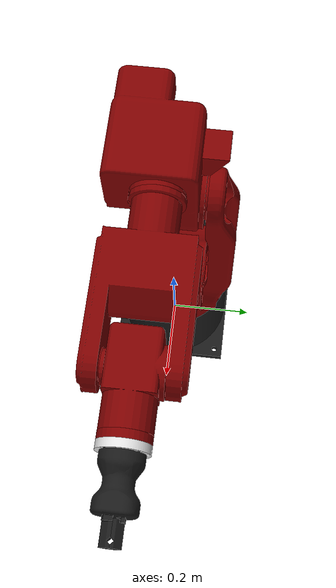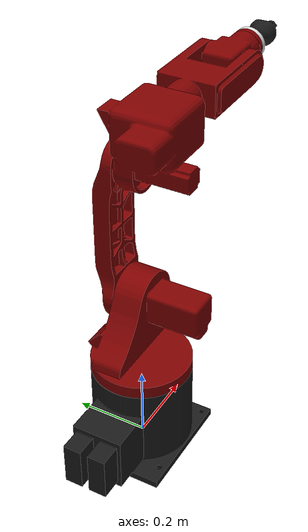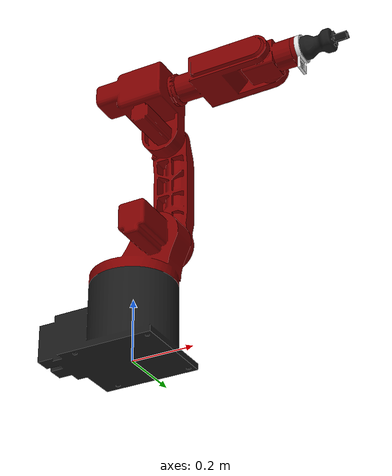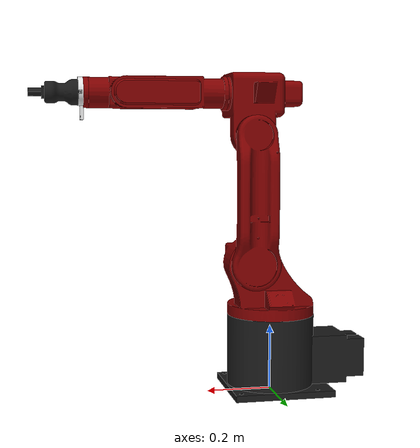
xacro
<?xml version="1.0" ?>
<robot name="borunte" xmlns:xacro="http://ros.org/wiki/xacro">
    <xacro:include filename="$(find borunte_support)/urdf/borunte_hand_e_macro.xacro"/>
    <xacro:borunte_hand_e_macro prefix=""/>

        <!-- 'world' frame: default pose reference frame -->
    <link name="world" />
    <joint name="world-base_link" type="fixed">
      <origin xyz="0 0 0" rpy="0 0 0"/>
      <axis xyz="0 0 1"/>
      <child link="world"/>
      <parent link="base_link"/>
    </joint>
</robot>

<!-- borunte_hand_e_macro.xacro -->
<robot xmlns:xacro="http://ros.org/wiki/xacro">
  <xacro:macro name="borunte_hand_e_macro" params="prefix">

    <xacro:include filename="$(find borunte_support)/urdf/borunte_macro.xacro"/>
    <xacro:borunte_macro prefix="${prefix}"/>

    <xacro:include filename="$(find borunte_support)/urdf/robotiq_hand_e_macro.xacro"/>
    <xacro:robotiq_hand_e_macro prefix=""/>

    <!-- attach hand_e to eef -->
    <!-- tool0 flange is set to correct dimensions in the robotiq_hand_e_macro.xacro -->
    <!-- this assures that planning is done from the perspective of the fingers -->
    <joint name="${prefix}flange-borunte_robotiq_adapter" type="fixed">
      <origin xyz="0 0 0" rpy="0 0 0" />
      <parent link="${prefix}flange" />
      <child link="${prefix}borunte_robotiq_adapter" />
    </joint>

    <!-- Camera frame: location of wrist camera -->
    <link name="${prefix}rgb_camera_link" />
    <joint name="${prefix}borunte_robotiq_adapter-rgb_camera_link" type="fixed">
      <origin xyz="0.06 0 0.03" rpy="0 0 ${pi/2.0}" />
      <parent link="${prefix}borunte_robotiq_adapter" />
      <child link="${prefix}rgb_camera_link" />
    </joint>

    <!-- ROS-Industrial 'tool0' frame: all-zeros tool frame -->
    <link name="${prefix}tool0" />
    <joint name="${prefix}flange-tool0" type="fixed">
      <!-- marker -->
      <origin xyz="0 0 0.1605" rpy="0 ${pi*1} ${-pi/2.0}" />
      <parent link="${prefix}flange" />
      <child link="${prefix}tool0" />
    </joint>

  </xacro:macro>
</robot>

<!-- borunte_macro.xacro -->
<robot xmlns:xacro="http://ros.org/wiki/xacro">
  <xacro:macro name="borunte_macro" params="prefix">
    <material name="${prefix}Black">
      <color rgba="0.1 0.1 0.1 0.99"/>
    </material>
    <material name="${prefix}DarkRed">
      <color rgba="0.5 0.0 0.0 0.99"/>
    </material>

    <!-- link list -->
    <link name="${prefix}base_link">
      <visual>
        <geometry>
          <mesh filename="package://borunte_support/meshes/base_link.stl"/>
        </geometry>
        <origin rpy="0.0 0 0.0" xyz="0 0 0"/>
        <material name="${prefix}Black"/>
      </visual>
      <collision>
        <geometry>
          <mesh filename="package://borunte_support/meshes/base_link_collision.stl"/>
        </geometry>
        <origin rpy="0.0 0 0.0" xyz="0 0 0"/>
      </collision>
    </link>

    <link name="${prefix}link_1">
      <visual>
        <geometry>
          <mesh filename="package://borunte_support/meshes/link_1.stl"/>
        </geometry>
        <origin rpy="0.0 0 0.0" xyz="0 0 0"/>
        <material name="${prefix}DarkRed"/>
      </visual>
      <collision>
        <geometry>
          <mesh filename="package://borunte_support/meshes/link_1_collision.stl"/>
        </geometry>
        <origin rpy="0.0 0 0.0" xyz="0 0 0"/>
      </collision>
      <inertial>
        <mass value="100"/>
        <inertia ixx="1.0" ixy="0.0" ixz="0.0" iyy="1.0" iyz="0.0" izz="1.0"/>
      </inertial>
    </link>

    <link name="${prefix}link_2">
      <visual>
        <geometry>
          <mesh filename="package://borunte_support/meshes/link_2.stl"/>
        </geometry>
        <origin rpy="0.0 0 0.0" xyz="0 0 0"/>
        <material name="${prefix}DarkRed"/>
      </visual>
      <collision>
        <geometry>
          <mesh filename="package://borunte_support/meshes/link_2_collision.stl"/>
        </geometry>
        <origin rpy="0.0 0 0.0" xyz="0 0 0"/>
      </collision>
      <inertial>
        <mass value="100"/>
        <inertia ixx="1.0" ixy="0.0" ixz="0.0" iyy="1.0" iyz="0.0" izz="1.0"/>
      </inertial>
    </link>

    <link name="${prefix}link_3">
      <visual>
        <geometry>
          <mesh filename="package://borunte_support/meshes/link_3.stl"/>
        </geometry>
        <origin rpy="0.0 0 0.0" xyz="0 0.01 0"/>
        <material name="${prefix}DarkRed"/>
      </visual>
      <collision>
        <geometry>
          <mesh filename="package://borunte_support/meshes/link_3_collision.stl"/>
        </geometry>
        <origin rpy="0.0 0 0.0" xyz="0 0.01 0"/>
      </collision>
      <inertial>
        <mass value="100"/>
        <inertia ixx="1.0" ixy="0.0" ixz="0.0" iyy="1.0" iyz="0.0" izz="1.0"/>
      </inertial>
    </link>

    <link name="${prefix}link_4">
      <visual>
        <geometry>
          <mesh filename="package://borunte_support/meshes/link_4.stl"/>
        </geometry>
        <origin rpy="0.0 0.0 0.0" xyz="0 0 0"/>
        <material name="${prefix}DarkRed"/>
      </visual>
      <collision>
        <geometry>
          <mesh filename="package://borunte_support/meshes/link_4_collision.stl"/>
        </geometry>
        <origin rpy="0.0 0 0.0" xyz="0 0 0"/>
      </collision>
      <inertial>
        <mass value="100"/>
        <inertia ixx="1.0" ixy="0.0" ixz="0.0" iyy="1.0" iyz="0.0" izz="1.0"/>
      </inertial>
    </link>

    <link name="${prefix}link_5">
      <visual>
        <geometry>
          <mesh filename="package://borunte_support/meshes/link_5.stl"/>
        </geometry>
        <origin rpy="0 0 0" xyz="0 0 0"/>
        <material name="${prefix}DarkRed"/>
      </visual>
      <collision>
        <geometry>
          <mesh filename="package://borunte_support/meshes/link_5_collision.stl"/>
        </geometry>
        <origin rpy="0 0 0" xyz="0 0 0"/>
      </collision>
      <inertial>
        <mass value="100"/>
        <inertia ixx="1.0" ixy="0.0" ixz="0.0" iyy="1.0" iyz="0.0" izz="1.0"/>
      </inertial>
    </link>

    <link name="${prefix}link_6">
      <visual>
        <geometry>
          <mesh filename="package://borunte_support/meshes/link_6.stl"/>
        </geometry>
        <origin rpy="0 0 0.0" xyz="0 0 0"/>
        <material name="${prefix}DarkRed"/>
      </visual>
      <collision>
        <geometry>
          <mesh filename="package://borunte_support/meshes/link_6_collision.stl"/>
        </geometry>
        <origin rpy="0 0 0.0" xyz="0 0 0"/>
      </collision>
      <inertial>
        <mass value="100"/>
        <inertia ixx="1.0" ixy="0.0" ixz="0.0" iyy="1.0" iyz="0.0" izz="1.0"/>
      </inertial>
    </link>

    <!-- joint list -->
    <joint name="${prefix}joint_1" type="revolute">
      <limit effort="1000.0" lower="-3.076" upper="3.076" velocity="3.14"/>
      <parent link="base_link"/>
      <child link="link_1"/>
      <axis xyz="0 0 1"/>
      <origin rpy="0.0 0.0 0.0" xyz="0 0 0.24"/>
    </joint>

    <joint name="${prefix}joint_2" type="revolute">
      <!-- actual limit -1.74, reduced to reduce config problems -->
      <limit effort="1000.0" lower="-1.0" upper="2.35" velocity="1.0"/>
      <parent link="link_1"/>
      <child link="link_2"/>
      <axis xyz="0 1 0"/>
      <origin rpy="0.0 0.0 0.0" xyz="0.07 0.09 0.165"/>
    </joint>

    <joint name="${prefix}joint_3" type="revolute">
      <limit effort="1000.0" lower="-2.094" upper="1.570" velocity="1.3"/>
      <parent link="link_2"/>
      <child link="link_3"/>
      <axis xyz="0 1 0"/>
      <origin rpy="0.0 ${pi/2.0} 0.0" xyz="0.0 0.0 0.39"/>
    </joint>

    <joint name="${prefix}joint_4" type="revolute">
      <!-- actual limit +-2.094, reduced to reduce config problems -->
      <limit effort="1000.0" lower="${-pi/2.0}" upper="${pi/2.0}" velocity="2.0"/>
      <parent link="link_3"/>
      <child link="link_4"/>
      <axis xyz="0 0 1"/>
      <origin rpy="0.0 0.0 0.0" xyz="-0.125 -0.09 0.075"/>
    </joint>

    <joint name="${prefix}joint_5" type="revolute">
      <limit effort="1000.0" lower="-1.919" upper="2.094" velocity="2.35"/>
      <parent link="link_4"/>
      <child link="link_5"/>
      <axis xyz="0 1 0"/>
      <origin rpy="0.0 0.0 0.0" xyz="0.0 -0.0 0.31"/>
    </joint>

    <joint name="${prefix}joint_6" type="revolute">
      <limit effort="1000.0" lower="${-pi}" upper="${pi}" velocity="2.35"/>
      <parent link="link_5"/>
      <child link="link_6"/>
      <axis xyz="0 0 1"/>
      <origin rpy="0.0 0.0 0.0" xyz="0 0 0.104"/>
    </joint>

    <!-- ROS-Industrial 'base' frame: base_link to Fanuc World Coordinates transform -->
    <link name="${prefix}base" />
    <joint name="${prefix}base_link-base" type="fixed">
      <origin xyz="0 0 0" rpy="0 0 0"/>
      <axis xyz="0 0 1"/>
      <parent link="${prefix}base_link"/>
      <child link="${prefix}base"/>
    </joint>

    <!-- ROS-Industrial 'flange' frame: attachment point for EEF models -->
    <link name="${prefix}flange"/>
    <joint name="${prefix}joint_6-flange" type="fixed">
      <origin xyz="0 0 0.015" rpy="0 0 0" />
      <parent link="${prefix}link_6" />
      <child link="${prefix}flange" />
    </joint>

  </xacro:macro>
</robot>

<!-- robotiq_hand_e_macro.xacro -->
<robot xmlns:xacro="http://ros.org/wiki/xacro">
  <xacro:macro name="robotiq_hand_e_macro" params="prefix">

    <xacro:include filename="$(find borunte_support)/urdf/robotiq_hand_e_base_macro.xacro"/>
    <xacro:robotiq_hand_e_base_macro prefix="${prefix}"/>

    <link name="${prefix}simple_grip_finger_left">
      <visual>
        <geometry>
          <mesh filename="package://borunte_support/meshes/simple_grip_finger.stl"/>
        </geometry>
        <origin xyz="0 0 0" rpy="0 0 0"/>
        <material name="${prefix}Black_Aluminum"/>
      </visual>
      <collision>
        <geometry>
          <mesh filename="package://borunte_support/meshes/simple_grip_finger_collision.stl"/>
        </geometry>
        <origin xyz="0 0 0" rpy="0 0 0.0"/>
      </collision>
    </link>
    <joint name="${prefix}robotiq_hand_e-simple_grip_finger_left" type="fixed">
      <parent link="${prefix}robotiq_hand_e" />
      <child link="${prefix}simple_grip_finger_left" />
      <axis xyz="0 0 1"/>
      <origin xyz="0 0 0.0965" rpy="0 0 ${pi/2.0}" />
    </joint>

    <link name="${prefix}simple_grip_finger_right">
      <visual>
        <geometry>
          <mesh filename="package://borunte_support/meshes/simple_grip_finger.stl"/>
        </geometry>
        <origin xyz="0 0 0" rpy="0 0 0"/>
        <material name="${prefix}Black_Aluminum"/>
      </visual>
      <collision>
        <geometry>
          <mesh filename="package://borunte_support/meshes/simple_grip_finger_collision.stl"/>
        </geometry>
        <origin xyz="0 0 0" rpy="0 0 0.0"/>
      </collision>
    </link>
    <joint name="${prefix}robotiq_hand_e-simple_grip_finger_right" type="fixed">
      <parent link="${prefix}robotiq_hand_e" />
      <child link="${prefix}simple_grip_finger_right" />
      <axis xyz="0 0 1"/>
      <origin xyz="0 0 0.0965" rpy="0 0 -${pi/2.0}" />
    </joint>

  </xacro:macro>
</robot>

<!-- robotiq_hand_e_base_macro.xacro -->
<robot xmlns:xacro="http://ros.org/wiki/xacro">
  <xacro:macro name="robotiq_hand_e_base_macro" params="prefix">

    <material name="${prefix}Black_Aluminum">
      <color rgba="0.1 0.1 0.1 0.99"/>
    </material>

    <material name="${prefix}White_Plastic">
      <color rgba="0.9 0.9 0.9 0.99"/>
    </material>

    <link name="${prefix}borunte_robotiq_adapter">
      <visual>
        <geometry>
          <mesh filename="package://borunte_support/meshes/robotiq_adapter.stl"/>
        </geometry>
        <origin xyz="0 0 0" rpy="0 0 0" />
        <material name="${prefix}White_Plastic"/>
      </visual>
      <collision>
        <geometry>
          <mesh filename="package://borunte_support/meshes/robotiq_adapter_collision.stl"/>
        </geometry>
        <origin xyz="0 0 0" rpy="0 0 0" />
      </collision>
    </link>

    <link name="${prefix}robotiq_hand_e">
      <visual>
        <geometry>
          <mesh filename="package://borunte_support/meshes/robotiq_hand-e_gripper.stl"/>
        </geometry>
        <origin xyz="0 0 -0.003" rpy="0 0 0"/>
        <material name="${prefix}Black_Aluminum"/>
      </visual>
      <collision>
        <geometry>
          <mesh filename="package://borunte_support/meshes/robotiq_hand-e_gripper_collision.stl"/>
        </geometry>
        <origin xyz="0 0 0" rpy="0 0 0"/>
      </collision>
    </link>
    <joint name="${prefix}borunte_robotiq_adapter-robotiq_hand_e" type="fixed">
      <parent link="${prefix}borunte_robotiq_adapter" />
      <child link="${prefix}robotiq_hand_e" />
      <axis xyz="0 0 1"/>
      <origin xyz="0 0 0.015" rpy="${pi} ${pi} ${pi/2.0}" />
    </joint>

    </xacro:macro>
</robot>
